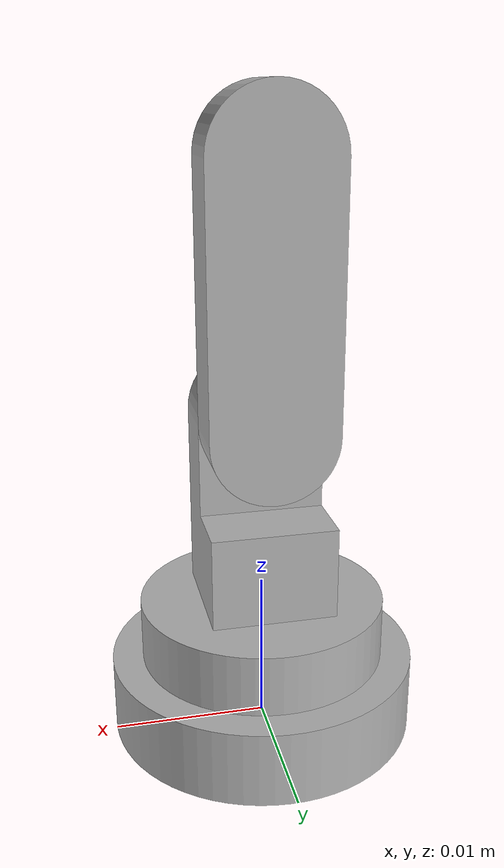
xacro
<?xml version="1.0" ?>
<robot name="grabber" xmlns:xacro="http://www.ros.org/wiki/xacro">

<xacro:include filename="$(find grabber_description)/urdf/materials.xacro" />
<xacro:include filename="$(find grabber_description)/urdf/grabber.trans" />
<xacro:include filename="$(find grabber_description)/urdf/grabber.gazebo" />
<link name="base_link">
  <inertial>
    <origin xyz="-2.3160092400488117e-17 1.1580046200244058e-17 0.024999999999999994" rpy="0 0 0"/>
    <mass value="12.330751165339937"/>
    <inertia ixx="0.033396" iyy="0.033396" izz="0.061654" ixy="-0.0" iyz="-0.0" ixz="-0.0"/>
  </inertial>
  <visual>
    <origin xyz="0 0 0" rpy="0 0 0"/>
    <geometry>
      <mesh filename="package://grabber_description/meshes/base_link.stl" scale="0.001 0.001 0.001"/>
    </geometry>
    <material name="silver"/>
  </visual>
  <collision>
    <origin xyz="0 0 0" rpy="0 0 0"/>
    <geometry>
      <mesh filename="package://grabber_description/meshes/base_link.stl" scale="0.001 0.001 0.001"/>
    </geometry>
  </collision>
</link>

<link name="rotator_1_1">
  <inertial>
    <origin xyz="0.0 -0.00395104235399263 0.05788614892425671" rpy="0 0 0"/>
    <mass value="11.624112671235805"/>
    <inertia ixx="0.043574" iyy="0.04365" izz="0.025581" ixy="0.0" iyz="0.004053" ixz="0.0"/>
  </inertial>
  <visual>
    <origin xyz="-0.0 -0.0 -0.05" rpy="0 0 0"/>
    <geometry>
      <mesh filename="package://grabber_description/meshes/rotator_1_1.stl" scale="0.001 0.001 0.001"/>
    </geometry>
    <material name="silver"/>
  </visual>
  <collision>
    <origin xyz="-0.0 -0.0 -0.05" rpy="0 0 0"/>
    <geometry>
      <mesh filename="package://grabber_description/meshes/rotator_1_1.stl" scale="0.001 0.001 0.001"/>
    </geometry>
  </collision>
</link>

<link name="arm_1_1">
  <inertial>
    <origin xyz="-6.377389282233048e-18 0.02 0.07999999999999993" rpy="0 0 0"/>
    <mass value="5.597536149163512"/>
    <inertia ixx="0.02434" iyy="0.026369" izz="0.003521" ixy="0.0" iyz="0.0" ixz="-0.0"/>
  </inertial>
  <visual>
    <origin xyz="-0.0 -0.0 -0.21" rpy="0 0 0"/>
    <geometry>
      <mesh filename="package://grabber_description/meshes/arm_1_1.stl" scale="0.001 0.001 0.001"/>
    </geometry>
    <material name="silver"/>
  </visual>
  <collision>
    <origin xyz="-0.0 -0.0 -0.21" rpy="0 0 0"/>
    <geometry>
      <mesh filename="package://grabber_description/meshes/arm_1_1.stl" scale="0.001 0.001 0.001"/>
    </geometry>
  </collision>
</link>

<joint name="Revolute 1" type="continuous">
  <origin xyz="0.0 0.0 0.05" rpy="0 0 0"/>
  <parent link="base_link"/>
  <child link="rotator_1_1"/>
  <axis xyz="0.0 0.0 1.0"/>
</joint>

<joint name="Revolute 2" type="revolute">
  <origin xyz="0.0 0.0 0.16" rpy="0 0 0"/>
  <parent link="rotator_1_1"/>
  <child link="arm_1_1"/>
  <axis xyz="0.0 1.0 0.0"/>
  <limit upper="1.570796" lower="-1.570796" effort="100" velocity="100"/>
</joint>

</robot>

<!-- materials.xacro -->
<robot name="grabber" xmlns:xacro="http://www.ros.org/wiki/xacro" >

<material name="silver">
  <color rgba="0.700 0.700 0.700 1.000"/>
</material>

</robot>

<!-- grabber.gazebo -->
<robot name="grabber" xmlns:xacro="http://www.ros.org/wiki/xacro" >

<xacro:property name="body_color" value="Gazebo/Silver" />

<gazebo>
  <plugin name="control" filename="libgazebo_ros_control.so"/>
</gazebo>
<gazebo reference="base_link">
  <material>${body_color}</material>
  <mu1>0.2</mu1>
  <mu2>0.2</mu2>
  <selfCollide>true</selfCollide>
  <gravity>true</gravity>
</gazebo>

<gazebo reference="rotator_1_1">
  <material>${body_color}</material>
  <mu1>0.2</mu1>
  <mu2>0.2</mu2>
  <selfCollide>true</selfCollide>
</gazebo>

<gazebo reference="arm_1_1">
  <material>${body_color}</material>
  <mu1>0.2</mu1>
  <mu2>0.2</mu2>
  <selfCollide>true</selfCollide>
</gazebo>

</robot>
